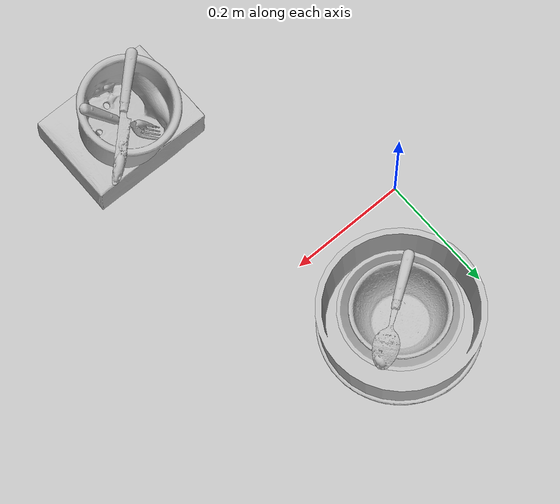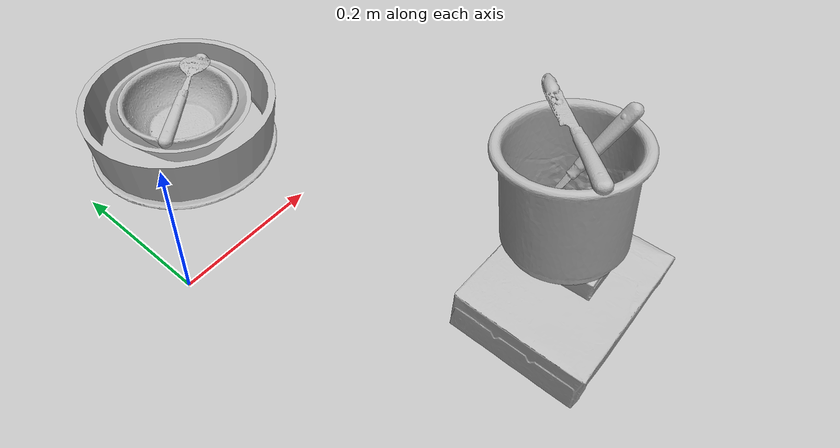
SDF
<?xml version="1.0" ?>
<sdf version="1.4">

  <world name="default">

    <light name="light1" type="point">

      <pose>0 0 1 0 0 0</pose>

      <diffuse>3 3 3 1</diffuse>

      <specular>3 3 3 1</specular>

    </light>

    <light name="light2" type="point">

      <pose>0 0.5 2 0 0 0</pose>

      <diffuse>1 1 1 1</diffuse>

      <specular>1 1 1 1</specular>

    </light>

    <light name="light3" type="point">

      <pose>0 0.5 2 0 0 0</pose>

      <diffuse>3 3 3 1</diffuse>

      <specular>3 3 3 1</specular>

    </light>

    <scene>

      <ambient>0.7 0.7 0.7</ambient>

    </scene>

    <model name="plate1">

      <link name="link_plate1">

        <collision name="default">

          <geometry>

            <mesh>

              <uri>model://plate/collision_meshes/collision.obj</uri>

              <scale>1.0 1.0 1.0</scale>

            </mesh>

          </geometry>

          <surface>

            <friction>

              <ode>

                <mu>0.5</mu>

                <mu2>0.5</mu2>

              </ode>

            </friction>

          </surface>

        </collision>

        <visual name="default">

          <geometry>

            <mesh>

              <uri>model://plate/visual_meshes/visual.dae</uri>

              <scale>1.0 1.0 1.0</scale>

            </mesh>

          </geometry>

        </visual>

        <inertial>

          <mass>0.1516857147216797</mass>

          <pose>-0.0006044649053364992 0.00027825761935673654 -0.0010561972158029675 0.002218765199568956 -0.003225488596237322 0.4526153800388047</pose>

          <inertia>

            <ixx>0.00070958876</ixx>

            <iyy>0.0007028018</iyy>

            <izz>0.00138785</izz>

            <ixy>0</ixy>

            <ixz>0</ixz>

            <iyz>0</iyz>

          </inertia>

        </inertial>

      </link>

      <pose>0.14995111525058746 0.1799897402524948 0.013739349320530891 -2.9867458744620528e-05 -8.063042427052573e-05 -0.0002771785880482357</pose>

    </model>

    <model name="plate2">

      <link name="link_plate2">

        <collision name="default">

          <geometry>

            <mesh>

              <uri>model://pan_tefal/collision_meshes/collision.obj</uri>

              <scale>1.0 1.0 1.0</scale>

            </mesh>

          </geometry>

          <surface>

            <friction>

              <ode>

                <mu>0.5</mu>

                <mu2>0.5</mu2>

              </ode>

            </friction>

          </surface>

        </collision>

        <visual name="default">

          <geometry>

            <mesh>

              <uri>model://pan_tefal/visual_meshes/visual.dae</uri>

              <scale>1.0 1.0 1.0</scale>

            </mesh>

          </geometry>

        </visual>

        <inertial>

          <mass>1.0862284898757935</mass>

          <pose>-0.00018001910939347 3.2794348953757435e-05 -0.00851493515074253 0.0008190334899032376 -0.0003301482999058744 -0.3318501395419688</pose>

          <inertia>

            <ixx>0.0074981838</ixx>

            <iyy>0.007546525</iyy>

            <izz>0.013802713</izz>

            <ixy>0</ixy>

            <ixz>0</ixz>

            <iyz>0</iyz>

          </inertia>

        </inertial>

      </link>

      <pose>0.15096032619476318 0.18030859529972076 0.06395874917507172 0.0025960768455173316 -0.0053591465904433006 0.004612799978370965</pose>

    </model>

    <model name="bowl1">

      <link name="link_bowl1">

        <collision name="default">

          <geometry>

            <mesh>

              <uri>model://bowl_a/collision_meshes/collision.obj</uri>

              <scale>1.0 1.0 1.0</scale>

            </mesh>

          </geometry>

          <surface>

            <friction>

              <ode>

                <mu>0.5</mu>

                <mu2>0.5</mu2>

              </ode>

            </friction>

          </surface>

        </collision>

        <visual name="default">

          <geometry>

            <mesh>

              <uri>model://bowl_a/visual_meshes/visual.dae</uri>

              <scale>1.0 1.0 1.0</scale>

            </mesh>

          </geometry>

        </visual>

        <inertial>

          <mass>0.23323877155780792</mass>

          <pose>0.0002786752884276211 4.7312129026977345e-05 -0.001376529224216938 -0.000980538139416196 -0.00109382495954127 -0.19123674059098103</pose>

          <inertia>

            <ixx>0.0006640416</ixx>

            <iyy>0.0006681184</iyy>

            <izz>0.0011810234</izz>

            <ixy>0</ixy>

            <ixz>0</ixz>

            <iyz>0</iyz>

          </inertia>

        </inertial>

      </link>

      <pose>0.15181009471416473 0.17920006811618805 0.06407910585403442 0.005531805430700225 -0.004499382103226852 0.001994418274298615</pose>

    </model>

    <model name="bowl2">

      <link name="link_bowl2">

        <collision name="default">

          <geometry>

            <mesh>

              <uri>model://bowl/collision_meshes/collision.obj</uri>

              <scale>1.0 1.0 1.0</scale>

            </mesh>

          </geometry>

          <surface>

            <friction>

              <ode>

                <mu>0.5</mu>

                <mu2>0.5</mu2>

              </ode>

            </friction>

          </surface>

        </collision>

        <visual name="default">

          <geometry>

            <mesh>

              <uri>model://bowl/visual_meshes/visual.dae</uri>

              <scale>1.0 1.0 1.0</scale>

            </mesh>

          </geometry>

        </visual>

        <inertial>

          <mass>0.08787161856889725</mass>

          <pose>0.00020445531117729843 -0.0010302038863301277 -0.0008042651461437345 -0.015764035308279474 0.014546860922519275 0.7140443952173783</pose>

          <inertia>

            <ixx>0.00020184812</ixx>

            <iyy>0.00019733804</iyy>

            <izz>0.00033957793</izz>

            <ixy>0</ixy>

            <ixz>0</ixz>

            <iyz>0</iyz>

          </inertia>

        </inertial>

      </link>

      <pose>0.15104953944683075 0.18053141236305237 0.07305008172988892 0.05524435644218391 -0.003007894700499984 0.030725389184817042</pose>

    </model>

    <model name="silverware1">

      <link name="link_silverware1">

        <collision name="default">

          <geometry>

            <mesh>

              <uri>model://spoon/collision_meshes/collision.obj</uri>

              <scale>1.0 1.0 1.0</scale>

            </mesh>

          </geometry>

          <surface>

            <friction>

              <ode>

                <mu>0.5</mu>

                <mu2>0.5</mu2>

              </ode>

            </friction>

          </surface>

        </collision>

        <visual name="default">

          <geometry>

            <mesh>

              <uri>model://spoon/visual_meshes/visual.dae</uri>

              <scale>1.0 1.0 1.0</scale>

            </mesh>

          </geometry>

        </visual>

        <inertial>

          <mass>0.028818774968385696</mass>

          <pose>-0.0055263228714466095 -0.0016034181462600827 -0.0007271657814271748 0.03521556092832266 -0.039065843026344464 0.006150610888934851</pose>

          <inertia>

            <ixx>1.6029475e-06</ixx>

            <iyy>0.0001096545</iyy>

            <izz>0.000110445</izz>

            <ixy>0</ixy>

            <ixz>0</ixz>

            <iyz>0</iyz>

          </inertia>

        </inertial>

      </link>

      <pose>0.15952177345752716 0.17337943613529205 0.10560938715934753 -3.1361011794380924 -0.04728893227135035 0.6178586173569487</pose>

    </model>

    <model name="box1">

      <link name="link_box1">

        <collision name="default">

          <geometry>

            <mesh>

              <uri>model://cracker_box/collision_meshes/collision.obj</uri>

              <scale>1.0 1.0 1.0</scale>

            </mesh>

          </geometry>

          <surface>

            <friction>

              <ode>

                <mu>0.5</mu>

                <mu2>0.5</mu2>

              </ode>

            </friction>

          </surface>

        </collision>

        <visual name="default">

          <geometry>

            <mesh>

              <uri>model://cracker_box/visual_meshes/visual.dae</uri>

              <scale>1.0 1.0 1.0</scale>

            </mesh>

          </geometry>

        </visual>

        <inertial>

          <mass>2.9781224727630615</mass>

          <pose>0.0009464174509048462 0.00025434247800149024 -0.0017029534792527556 -0.0003162077703261406 -0.01110649239447325 0.0025467938390949236</pose>

          <inertia>

            <ixx>0.007575013</ixx>

            <iyy>0.012507835</iyy>

            <izz>0.017849829</izz>

            <ixy>0</ixy>

            <ixz>0</ixz>

            <iyz>0</iyz>

          </inertia>

        </inertial>

      </link>

      <pose>0.2695341408252716 -0.349959135055542 0.03553225100040436 3.137144413120435 -0.01655627906235165 -0.0011216248603598505</pose>

    </model>

    <model name="box2">

      <link name="link_box2">

        <collision name="default">

          <geometry>

            <mesh>

              <uri>model://gelatin_box/collision_meshes/collision.obj</uri>

              <scale>1.0 1.0 1.0</scale>

            </mesh>

          </geometry>

          <surface>

            <friction>

              <ode>

                <mu>0.5</mu>

                <mu2>0.5</mu2>

              </ode>

            </friction>

          </surface>

        </collision>

        <visual name="default">

          <geometry>

            <mesh>

              <uri>model://gelatin_box/visual_meshes/visual.dae</uri>

              <scale>1.0 1.0 1.0</scale>

            </mesh>

          </geometry>

        </visual>

        <inertial>

          <mass>0.16266882419586182</mass>

          <pose>0.0004319618456065655 0.00011156871914863586 -0.0003640321083366871 -0.0010503720968416132 -0.004755819155016646 0.016440559472150423</pose>

          <inertia>

            <ixx>0.00011483092</ixx>

            <iyy>8.202313e-05</iyy>

            <izz>0.00017479825</izz>

            <ixy>0</ixy>

            <ixz>0</ixz>

            <iyz>0</iyz>

          </inertia>

        </inertial>

      </link>

      <pose>0.28220656514167786 -0.3414623439311981 0.08735064417123795 3.093480933375792 -0.023506828972014202 0.022171044733642484</pose>

    </model>

    <model name="cup1">

      <link name="link_cup1">

        <collision name="default">

          <geometry>

            <mesh>

              <uri>model://f_cups/collision_meshes/collision.obj</uri>

              <scale>2.0 2.0 2.0</scale>

            </mesh>

          </geometry>

          <surface>

            <friction>

              <ode>

                <mu>0.5</mu>

                <mu2>0.5</mu2>

              </ode>

            </friction>

          </surface>

        </collision>

        <visual name="default">

          <geometry>

            <mesh>

              <uri>model://f_cups/visual_meshes/visual.dae</uri>

              <scale>2.0 2.0 2.0</scale>

            </mesh>

          </geometry>

        </visual>

        <inertial>

          <mass>0.6683602333068848</mass>

          <pose>-0.006342936307191849 -0.0012480152072384953 -0.0073110745288431644 0.7862253042657107 -0.260793604503958 -0.18237387444081576</pose>

          <inertia>

            <ixx>0.0025131067</ixx>

            <iyy>0.0026362767</iyy>

            <izz>0.0027444381</izz>

            <ixy>0</ixy>

            <ixz>0</ixz>

            <iyz>0</iyz>

          </inertia>

        </inertial>

      </link>

      <pose>0.28148365020751953 -0.316328763961792 0.16590389609336853 -0.19134769275897384 -0.012574666933843959 -0.035657422934585806</pose>

    </model>

    <model name="silverware2">

      <link name="link_silverware2">

        <collision name="default">

          <geometry>

            <mesh>

              <uri>model://knife/collision_meshes/collision.obj</uri>

              <scale>1.0 1.0 1.0</scale>

            </mesh>

          </geometry>

          <surface>

            <friction>

              <ode>

                <mu>0.5</mu>

                <mu2>0.5</mu2>

              </ode>

            </friction>

          </surface>

        </collision>

        <visual name="default">

          <geometry>

            <mesh>

              <uri>model://knife/visual_meshes/visual.dae</uri>

              <scale>1.0 1.0 1.0</scale>

            </mesh>

          </geometry>

        </visual>

        <inertial>

          <mass>0.03087119571864605</mass>

          <pose>-0.023785250261425972 0.0015275123296305537 5.062009586254135e-05 0.07305987484925712 0.017248420899959087 -0.007409824084002247</pose>

          <inertia>

            <ixx>8.762499e-07</ixx>

            <iyy>0.000118602155</iyy>

            <izz>0.00011888435</izz>

            <ixy>0</ixy>

            <ixz>0</ixz>

            <iyz>0</iyz>

          </inertia>

        </inertial>

      </link>

      <pose>0.29928264021873474 -0.29136672616004944 0.23879599571228027 3.028113773171017 0.17166333295190378 0.7528713577463921</pose>

    </model>

    <model name="silverware3">

      <link name="link_silverware3">

        <collision name="default">

          <geometry>

            <mesh>

              <uri>model://fork/collision_meshes/collision.obj</uri>

              <scale>1.0 1.0 1.0</scale>

            </mesh>

          </geometry>

          <surface>

            <friction>

              <ode>

                <mu>0.5</mu>

                <mu2>0.5</mu2>

              </ode>

            </friction>

          </surface>

        </collision>

        <visual name="default">

          <geometry>

            <mesh>

              <uri>model://fork/visual_meshes/visual.dae</uri>

              <scale>1.0 1.0 1.0</scale>

            </mesh>

          </geometry>

        </visual>

        <inertial>

          <mass>0.015284496359527111</mass>

          <pose>-0.02957003004848957 0.00046588233090005815 0.00032188600744120777 -0.013550803329795006 -0.010977829430356707 0.014453895799763906</pose>

          <inertia>

            <ixx>5.358081e-07</ixx>

            <iyy>3.9903432e-05</iyy>

            <izz>4.0143095e-05</izz>

            <ixy>0</ixy>

            <ixz>0</ixz>

            <iyz>0</iyz>

          </inertia>

        </inertial>

      </link>

      <pose>0.2973465323448181 -0.30922138690948486 0.18181464076042175 0.22518916049382326 0.9801293068683946 2.6356210881718494</pose>

    </model>

  </world>

</sdf>
